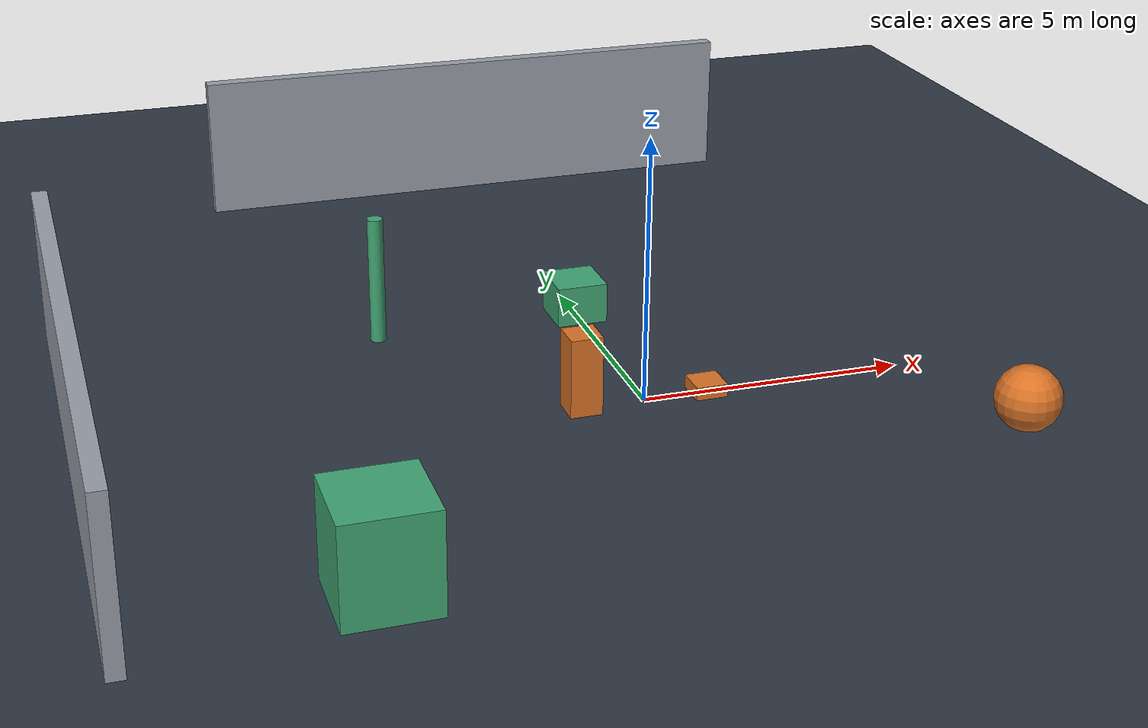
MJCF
<mujoco model="livox_mid360s_sample">
  <compiler angle="degree"/>
  <option timestep="0.01" gravity="0 0 0"/>

  <visual>
    <global offwidth="1600" offheight="1200"/>
    <quality shadowsize="4096"/>
  </visual>

  <asset>
    <texture name="skybox" type="skybox" builtin="gradient"
             rgb1="0.35 0.45 0.6" rgb2="0.05 0.06 0.1" width="256" height="256"/>
    <texture name="ground_checker" type="2d" builtin="checker" width="512" height="512"
             rgb1="0.22 0.26 0.32" rgb2="0.14 0.17 0.21"/>
    <material name="ground_mat" texture="ground_checker" texrepeat="30 30" reflectance="0.05"/>
    <material name="near_mat"   rgba="0.85 0.45 0.15 1"/>
    <material name="mid_mat"    rgba="0.25 0.65 0.45 1"/>
    <material name="wall_mat"   rgba="0.60 0.62 0.66 1"/>
    <material name="sensor_mat" rgba="0.08 0.08 0.09 1"/>
  </asset>

  <worldbody>
    <light name="key_light"  pos="0 0 8"   dir="0 0 -1"      diffuse="0.7 0.7 0.7"/>
    <light name="fill_light" pos="-8 -8 6" dir="0.7 0.7 -0.6" diffuse="0.4 0.4 0.4"/>
    <camera name="overview" pos="9 -11 7" mode="targetbody" target="lidar_mount"/>

    <geom name="ground" type="plane" size="40 40 0.1" material="ground_mat"/>

    <body name="lidar_mount" pos="0 0 0">
      <geom name="post"          type="cylinder" pos="0 0 0.235" size="0.030 0.235" material="sensor_mat"/>
      <geom name="lidar_housing" type="cylinder" pos="0 0 0.500" size="0.0325 0.030" material="sensor_mat"/>
      <site name="lidar_site"    pos="0 0 0.500" size="0.015" rgba="1 0.1 0.1 1"/>
    </body>

    <body name="box_low_near" pos="1.2 0 0.125">
      <geom name="box_low_near_geom" type="box" size="0.30 0.30 0.125" material="near_mat"/>
    </body>
    <body name="box_tall_near" pos="-1.2 0 0.75">
      <geom name="box_tall_near_geom" type="box" size="0.30 0.30 0.75" material="near_mat"/>
    </body>

    <!-- ===== Mid field: fully inside the vertical FOV ===== -->
    <body name="box_mid" pos="0 4 0.40">
      <geom name="box_mid_geom" type="box" size="0.50 0.50 0.40" material="mid_mat"/>
    </body>
    <body name="pole" pos="-4 4 1.25">
      <geom name="pole_geom" type="cylinder" size="0.15 1.25" material="mid_mat"/>
    </body>
    <body name="ball" pos="6 -3 0.60">
      <geom name="ball_geom" type="sphere" size="0.60" material="near_mat"/>
    </body>
    <body name="box_far" pos="-6 -5 0.90">
      <geom name="box_far_geom" type="box" size="0.80 0.80 0.90" material="mid_mat"/>
    </body>

    <!-- ===== Walls: occlusion shadows and the upper FOV limit ===== -->
    <body name="wall_back" pos="0 12 1.50">
      <geom name="wall_back_geom" type="box" size="6.0 0.15 1.50" material="wall_mat"/>
    </body>
    <body name="wall_side" pos="-10 0 1.50">
      <geom name="wall_side_geom" type="box" size="0.15 6.0 1.50" material="wall_mat"/>
    </body>
  </worldbody>
</mujoco>
